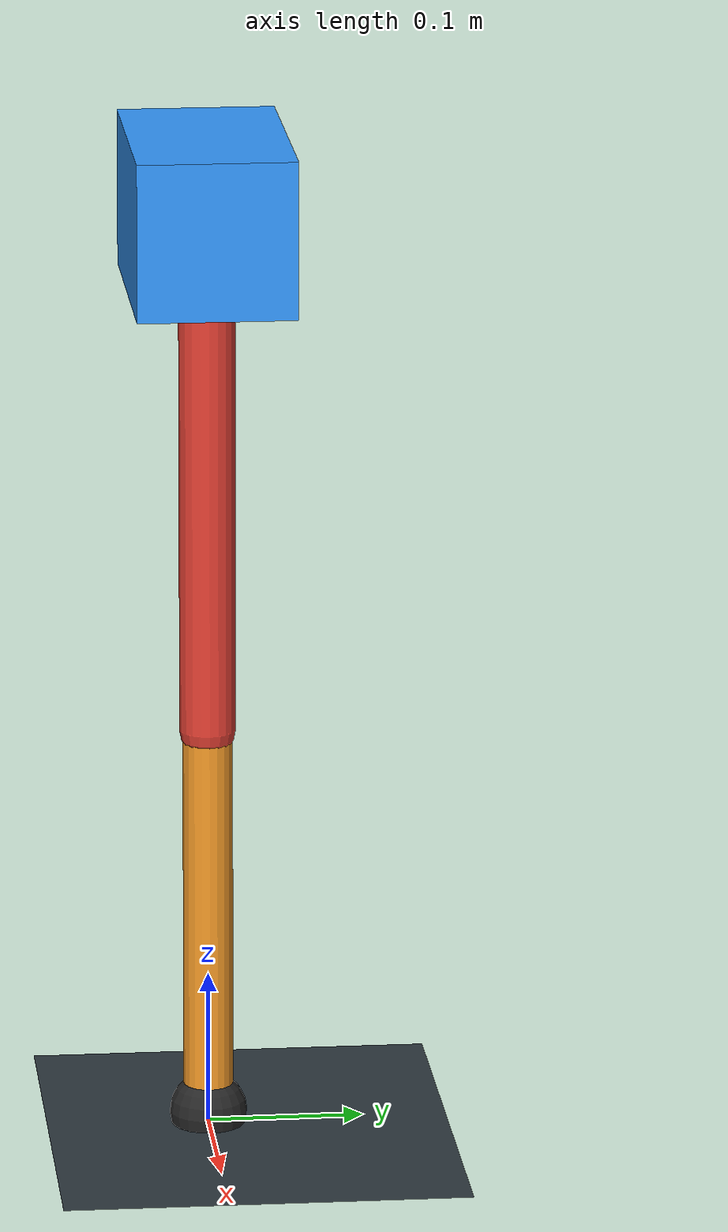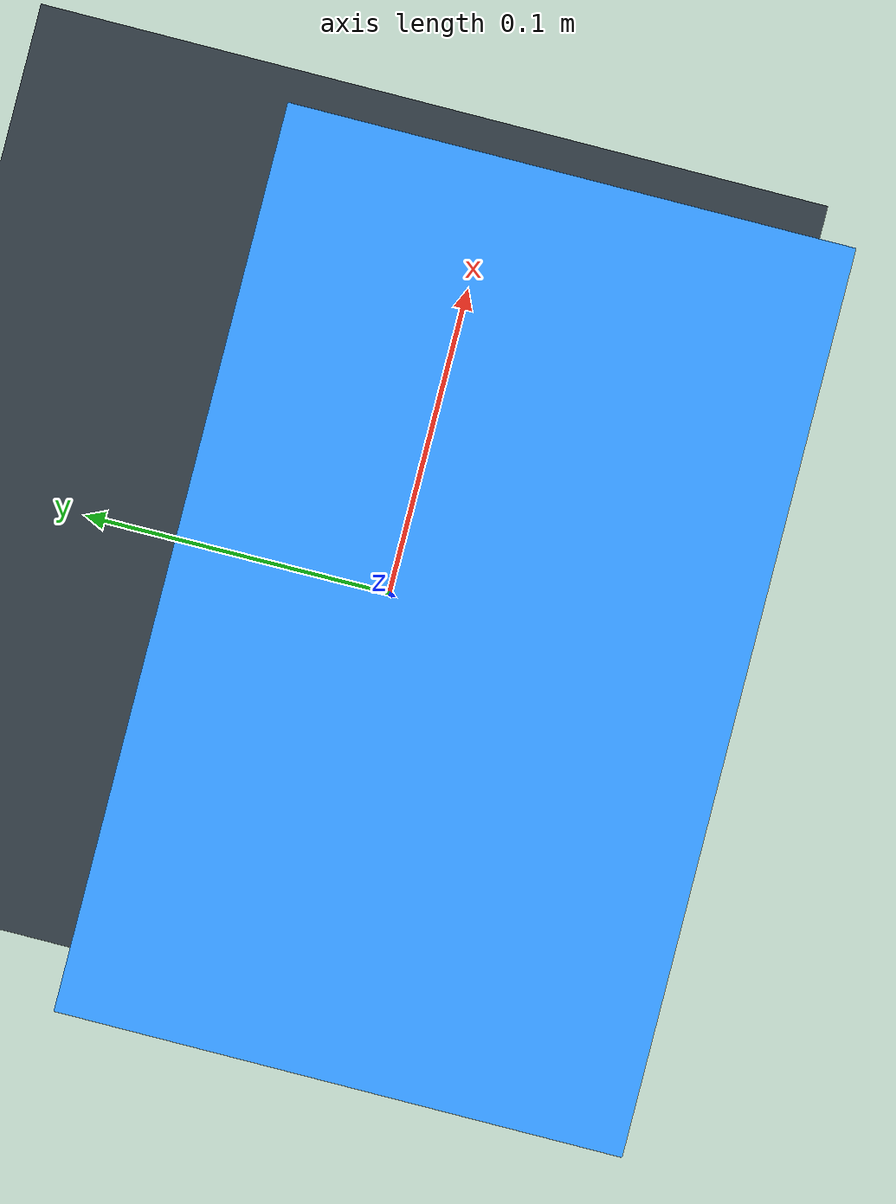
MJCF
<mujoco model="single_axis_two_bar">
  <compiler angle="radian" inertiafromgeom="true"/>
  <option timestep="0.001" integrator="implicitfast" gravity="0 0 -9.81"/>
  <default>
    <joint damping="0.08"/>
    <geom friction="1.2 0.01 0.0001" condim="3"/>
  </default>
  <worldbody>
    <geom name="floor" type="plane" size="5 5 0.1" rgba="0.18 0.22 0.25 1"/>
    <body name="carriage" pos="0 0 0.6018561969087908">
      <joint name="pole_slide" type="slide" axis="0 0 1"/>
      <geom name="payload" type="box" size="0.08 0.05 0.05" mass="3.0449268018424185" rgba="0.2 0.6 1 1"/>
      <body name="thigh" pos="0 0 0">
        <joint name="hip" type="hinge" axis="0 1 0"/>
        <geom name="thigh_link" type="capsule" fromto="0 0 0 0 0 -0.3375191962997907" size="0.018" mass="0.2404868872862883" rgba="0.9 0.25 0.2 1"/>
        <body name="shank" pos="0 0 -0.3375191962997907">
          <joint name="knee" type="hinge" axis="0 1 0"/>
          <geom name="shank_link" type="capsule" fromto="0 0 0 0 0 -0.25717791391545747" size="0.016" mass="0.18324266197106884" rgba="0.95 0.6 0.15 1"/>
          <geom name="foot" type="sphere" pos="0 0 -0.25717791391545747" size="0.025" mass="0.03" rgba="0.15 0.15 0.15 1"/>
          <site name="toe" pos="0 0 -0.25717791391545747" size="0.008"/>
        </body>
      </body>
    </body>
  </worldbody>
  <actuator>
    <motor name="hip_motor" joint="hip" ctrlrange="-31.623498697333584 31.623498697333584"/>
    <motor name="knee_motor" joint="knee" ctrlrange="-137.18377071989036 137.18377071989036"/>
  </actuator>
</mujoco>
